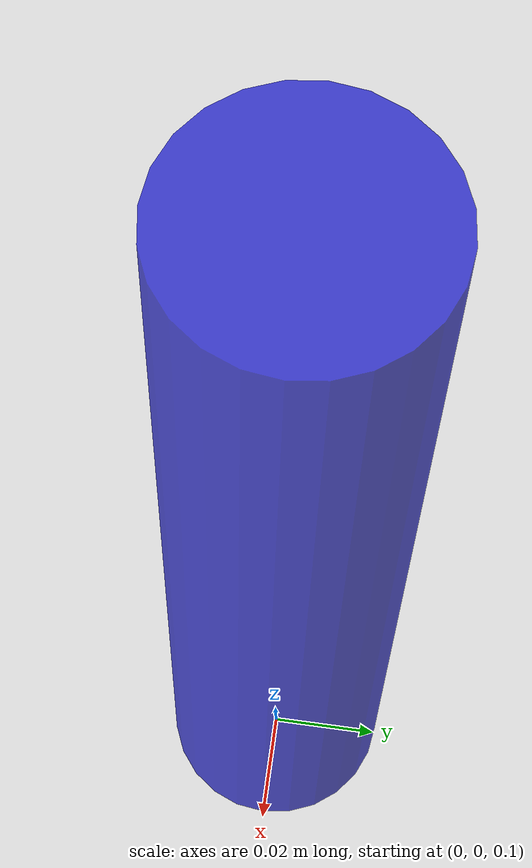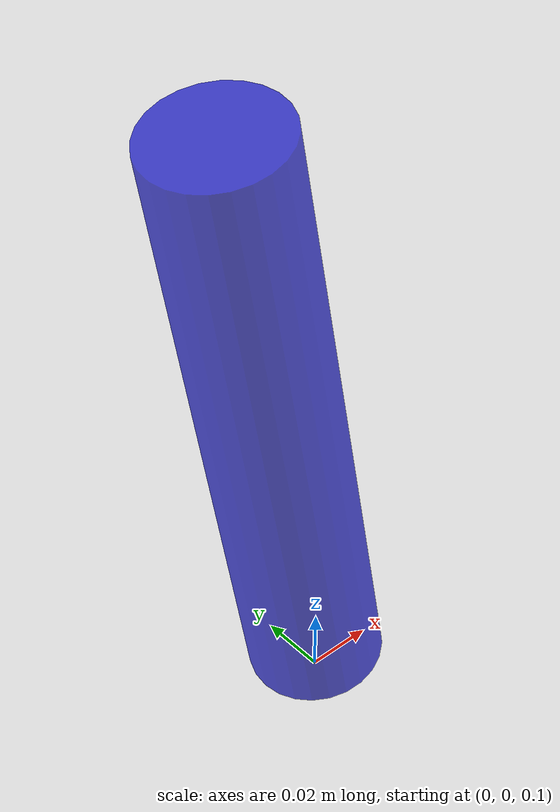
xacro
<?xml version="1.0"?>

<robot name="scooter" xmlns:xacro="https://www.ros.org/wiki/xacro">

    <xacro:include filename="$(find scooter)/urdf/properties.xacro"/>
    <xacro:include filename="$(find scooter)/urdf/scooter.gazebo" />

    <!-- base_link -->
    <link name="base_link"/>

    <!-- steering_link -->

    <link name="steering_link">
        <visual>
            <geometry>
                <cylinder radius="${thick_steering}" length="${steering_length}"/>
            </geometry>
            <origin xyz="0.0 0.0 0.0" rpy="0.0 0.0 0.0"/>
            <material name='blue'/>
        </visual>

        <collision>
            <geometry>
                <cylinder radius="${thick_steering}" length="${steering_length}"/>
            </geometry>
            <origin xyz="0.0 0.0 0.0" rpy="0.0 0.0 0.0"/>
        </collision>

        <mass value="${mass_steering_link}"/>
        <inertia ixx="${steering_ixx}" ixy="${steering_ixy}" ixz="${steering_ixz}" iyy="${steering_iyy}" iyz="${steering_iyz}" izz="${steering_izz}"/>
    </link>

        <joint name="front_wheel_to_steering_joint" type="revolute">
            <parent link="base_link"/>
            <child link="steering_link"/>
            <origin xyz="-${(steering_length/2 * cos(alpha))} 0.0 ${(steering_length/2 * sin(alpha)) + rad_front_wheel}" rpy="0.0 -${pi/2 - alpha} 0.0"/>
            <limit lower="-${pi/4}" upper="${pi/4}" effort="0.0" velocity="0.0"/>
            <axis xyz="0 0 1"/>
        </joint>

    <transmission name="tran1">
        <type>transmission_interface/SimpleTransmission</type>
        <joint name="steering_link">
        <hardwareInterface>hardware_interface/EffortJointInterface</hardwareInterface>
        </joint>
        <actuator name="steering_motor">
        <hardwareInterface>hardware_interface/EffortJointInterface</hardwareInterface>
        <mechanicalReduction>1</mechanicalReduction>
        </actuator>
    </transmission>

</robot>

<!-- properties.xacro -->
<robot name="xacro_properties" xmlns:xacro="http://ros.org/wiki/xacro">

    <!-- color properties -->
    <material name='black'>
        <color rgba="0 0 0 0.8"/>
    </material>
    <material name='gray'>
        <color rgba="0.4 0.4 0.4 0.7"/>
    </material>
    <material name='blue'>
        <color rgba="0 0 0.8 0.7"/>
    </material>
    <!-- xacro properties -->
    <xacro:property name="thick_wheel" value="0.044" />
        <!-- frame_link -->
    <xacro:property name="scale" value="${0.01}" />
    <xacro:property name="mass_frame_link" value="1.0" />
    <xacro:property name="front_ixx" value="1.0" />
    <xacro:property name="front_ixy" value="0.1" />
    <xacro:property name="front_ixz" value="0.1" />
    <xacro:property name="front_iyy" value="0.1" />
    <xacro:property name="front_iyz" value="0.1" />
    <xacro:property name="front_izz" value="0.1" />
        <!-- steering_link -->
    <xacro:property name="thick_steering" value="0.02" />
    <xacro:property name="alpha" value="${80 * pi / 180}" />
    <xacro:property name="steering_length" value="${0.2}" />
    <xacro:property name="mass_steering_link" value="${1.0}" />
    <xacro:property name="steering_ixx" value="1.0" />
    <xacro:property name="steering_ixy" value="0.1" />
    <xacro:property name="steering_ixz" value="0.1" />
    <xacro:property name="steering_iyy" value="0.1" />
    <xacro:property name="steering_iyz" value="0.1" />
    <xacro:property name="steering_izz" value="0.1" />
        <!-- front wheel  -->
    <xacro:property name="rad_front_wheel" value="${0.216/2}" />
    <xacro:property name="mass_front_wheel" value="1.0" />
    <xacro:property name="front_ixx" value="1.0" />
    <xacro:property name="front_ixy" value="0.1" />
    <xacro:property name="front_ixz" value="0.1" />
    <xacro:property name="front_iyy" value="0.1" />
    <xacro:property name="front_iyz" value="0.1" />
    <xacro:property name="front_izz" value="0.1" />
        <!-- back axis -->
    <xacro:property name="length_back_axis" value="0.3" />
    <xacro:property name="rad_back_wheel" value="${0.203/2}" />
        <!-- back wheel inertia -->
    <xacro:property name="mass_back_wheel" value="1.0" />
    <xacro:property name="back_ixx" value="1.0" />
    <xacro:property name="back_ixy" value="0.1" />
    <xacro:property name="back_ixz" value="0.1" />
    <xacro:property name="back_iyy" value="0.1" />
    <xacro:property name="back_iyz" value="0.1" />
    <xacro:property name="back_izz" value="0.1" />

</robot>
